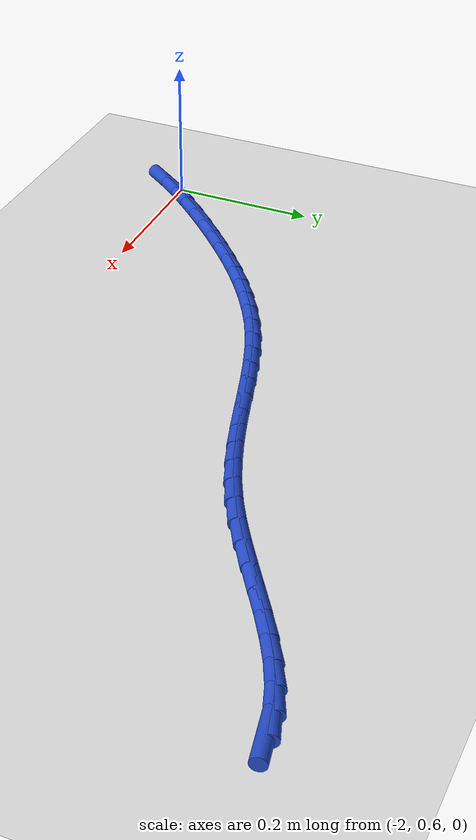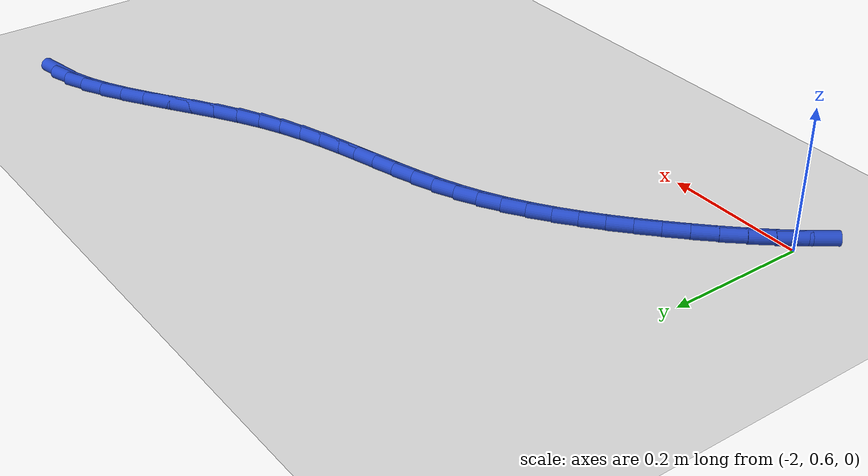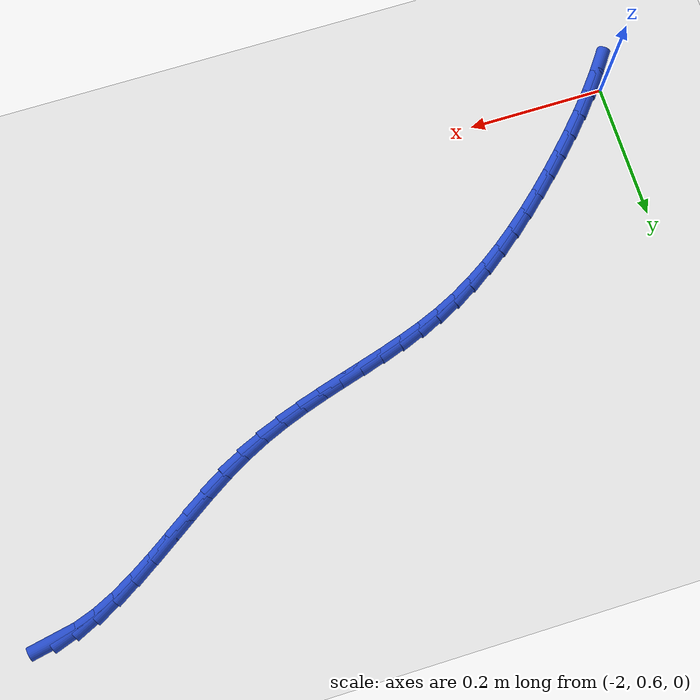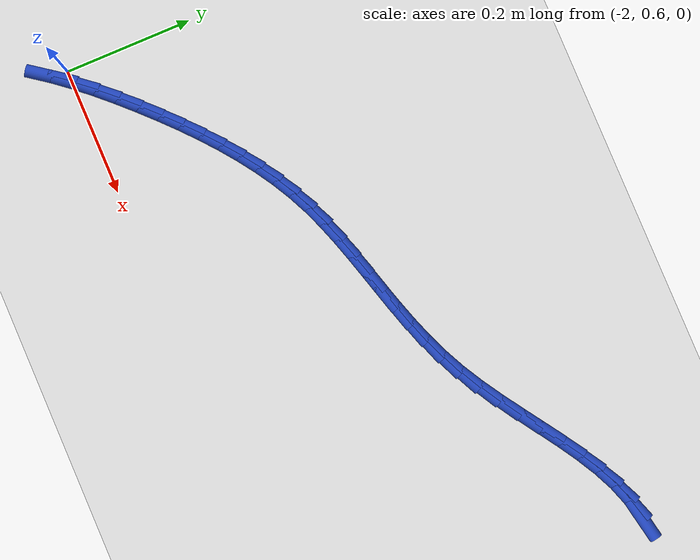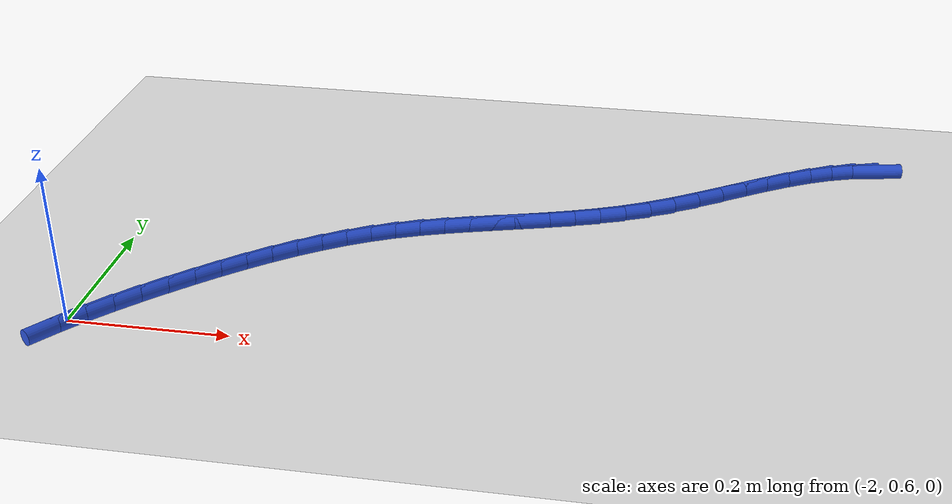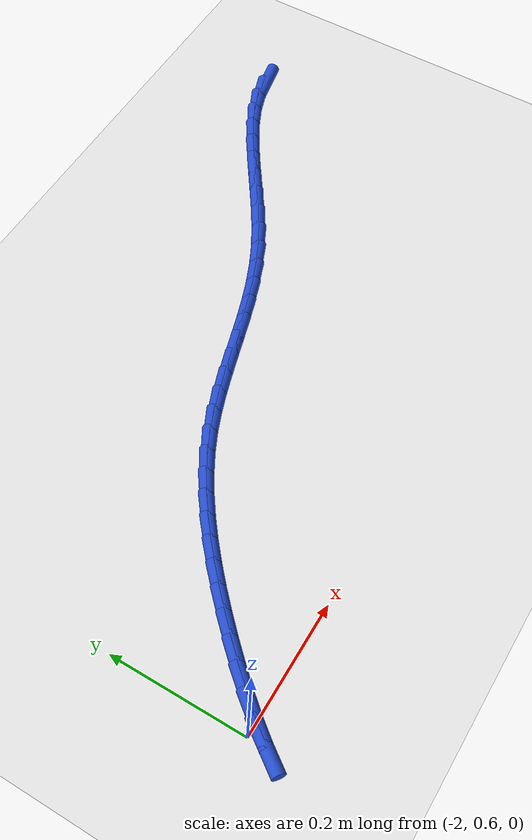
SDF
<sdf version="1.6">
 <world name="default">
  <model name="ground_plane">
   <static>1</static>
   <link name="link">
    <collision name="collision">
     <geometry><plane><normal>0 0 1</normal><size>100 100</size></plane></geometry>
     <surface><friction><ode><mu>100</mu><mu2>50</mu2></ode></friction></surface>
    </collision>
    <visual name="visual">
     <cast_shadows>0</cast_shadows>
     <geometry><plane><normal>0 0 1</normal><size>100 100</size></plane></geometry>
     <material>
      <script><uri>file://media/materials/scripts/gazebo.material</uri><name>Gazebo/WhiteGlow</name></script>
     </material>
    </visual>
   </link>
  </model>
  <model name="line">
   <link name="link_49">
    <pose>-1.0466964466362036 1.134004344013409 0.01 0 1.57 0.19464441656322196</pose>
    <collision name="collision">
     <geometry><cylinder><radius>0.01</radius><length>0.08</length></cylinder></geometry>
    </collision>
    <visual name="visual">
     <material>
      <script><name>Gazebo/Blue</name><uri>file://media/materials/scripts/gazebo.material</uri></script>
     </material>
     <geometry><cylinder><radius>0.01</radius><length>0.08</length></cylinder></geometry>
    </visual>
   </link>
   <link name="link_50">
    <pose>-1.0760655850857805 1.1282145009810196 0.01 0 1.57 0.33294182814942536</pose>
    <collision name="collision">
     <geometry><cylinder><radius>0.01</radius><length>0.08</length></cylinder></geometry>
    </collision>
    <visual name="visual">
     <material>
      <script><name>Gazebo/Blue</name><uri>file://media/materials/scripts/gazebo.material</uri></script>
     </material>
     <geometry><cylinder><radius>0.01</radius><length>0.08</length></cylinder></geometry>
    </visual>
   </link>
   <link name="link_51">
    <pose>-1.1056174985695253 1.117995001126438 0.01 0 1.57 0.43646254641301574</pose>
    <collision name="collision">
     <geometry><cylinder><radius>0.01</radius><length>0.08</length></cylinder></geometry>
    </collision>
    <visual name="visual">
     <material>
      <script><name>Gazebo/Blue</name><uri>file://media/materials/scripts/gazebo.material</uri></script>
     </material>
     <geometry><cylinder><radius>0.01</radius><length>0.08</length></cylinder></geometry>
    </visual>
   </link>
   <link name="link_52">
    <pose>-1.1353670049846938 1.1041178613363076 0.01 0 1.57 0.5100839713462348</pose>
    <collision name="collision">
     <geometry><cylinder><radius>0.01</radius><length>0.08</length></cylinder></geometry>
    </collision>
    <visual name="visual">
     <material>
      <script><name>Gazebo/Blue</name><uri>file://media/materials/scripts/gazebo.material</uri></script>
     </material>
     <geometry><cylinder><radius>0.01</radius><length>0.08</length></cylinder></geometry>
    </visual>
   </link>
   <link name="link_53">
    <pose>-1.1653289222285417 1.087355098497274 0.01 0 1.57 0.5587934895889223</pose>
    <collision name="collision">
     <geometry><cylinder><radius>0.01</radius><length>0.08</length></cylinder></geometry>
    </collision>
    <visual name="visual">
     <material>
      <script><name>Gazebo/Blue</name><uri>file://media/materials/scripts/gazebo.material</uri></script>
     </material>
     <geometry><cylinder><radius>0.01</radius><length>0.08</length></cylinder></geometry>
    </visual>
   </link>
   <link name="link_54">
    <pose>-1.1955180681983235 1.0684787294959799 0.01 0 1.57 0.586419737218822</pose>
    <collision name="collision">
     <geometry><cylinder><radius>0.01</radius><length>0.08</length></cylinder></geometry>
    </collision>
    <visual name="visual">
     <material>
      <script><name>Gazebo/Blue</name><uri>file://media/materials/scripts/gazebo.material</uri></script>
     </material>
     <geometry><cylinder><radius>0.01</radius><length>0.08</length></cylinder></geometry>
    </visual>
   </link>
   <link name="link_55">
    <pose>-1.225949260791296 1.0482607712190717 0.01 0 1.57 0.5953841174515219</pose>
    <collision name="collision">
     <geometry><cylinder><radius>0.01</radius><length>0.08</length></cylinder></geometry>
    </collision>
    <visual name="visual">
     <material>
      <script><name>Gazebo/Blue</name><uri>file://media/materials/scripts/gazebo.material</uri></script>
     </material>
     <geometry><cylinder><radius>0.01</radius><length>0.08</length></cylinder></geometry>
    </visual>
   </link>
   <link name="link_56">
    <pose>-1.256637317904714 1.0274732405531923 0.01 0 1.57 0.5867775291602454</pose>
    <collision name="collision">
     <geometry><cylinder><radius>0.01</radius><length>0.08</length></cylinder></geometry>
    </collision>
    <visual name="visual">
     <material>
      <script><name>Gazebo/Blue</name><uri>file://media/materials/scripts/gazebo.material</uri></script>
     </material>
     <geometry><cylinder><radius>0.01</radius><length>0.08</length></cylinder></geometry>
    </visual>
   </link>
   <link name="link_57">
    <pose>-1.2875970574358322 1.0068881543849864 0.01 0 1.57 0.560477921617894</pose>
    <collision name="collision">
     <geometry><cylinder><radius>0.01</radius><length>0.08</length></cylinder></geometry>
    </collision>
    <visual name="visual">
     <material>
      <script><name>Gazebo/Blue</name><uri>file://media/materials/scripts/gazebo.material</uri></script>
     </material>
     <geometry><cylinder><radius>0.01</radius><length>0.08</length></cylinder></geometry>
    </visual>
   </link>
   <link name="link_58">
    <pose>-1.318843297281907 0.9872775296010987 0.01 0 1.57 0.5152417630013832</pose>
    <collision name="collision">
     <geometry><cylinder><radius>0.01</radius><length>0.08</length></cylinder></geometry>
    </collision>
    <visual name="visual">
     <material>
      <script><name>Gazebo/Blue</name><uri>file://media/materials/scripts/gazebo.material</uri></script>
     </material>
     <geometry><cylinder><radius>0.01</radius><length>0.08</length></cylinder></geometry>
    </visual>
   </link>
   <link name="link_59">
    <pose>-1.3503908553401938 0.9694133830881732 0.01 0 1.57 0.4533265770896093</pose>
    <collision name="collision">
     <geometry><cylinder><radius>0.01</radius><length>0.08</length></cylinder></geometry>
    </collision>
    <visual name="visual">
     <material>
      <script><name>Gazebo/Blue</name><uri>file://media/materials/scripts/gazebo.material</uri></script>
     </material>
     <geometry><cylinder><radius>0.01</radius><length>0.08</length></cylinder></geometry>
    </visual>
   </link>
   <link name="link_60">
    <pose>-1.3822378140079319 0.95389867564105 0.01 0 1.57 0.39497438391797124</pose>
    <collision name="collision">
     <geometry><cylinder><radius>0.01</radius><length>0.08</length></cylinder></geometry>
    </collision>
    <visual name="visual">
     <material>
      <script><name>Gazebo/Blue</name><uri>file://media/materials/scripts/gazebo.material</uri></script>
     </material>
     <geometry><cylinder><radius>0.01</radius><length>0.08</length></cylinder></geometry>
    </visual>
   </link>
   <link name="link_61">
    <pose>-1.414302574950923 0.9405314615363625 0.01 0 1.57 0.3476762622930825</pose>
    <collision name="collision">
     <geometry><cylinder><radius>0.01</radius><length>0.08</length></cylinder></geometry>
    </collision>
    <visual name="visual">
     <material>
      <script><name>Gazebo/Blue</name><uri>file://media/materials/scripts/gazebo.material</uri></script>
     </material>
     <geometry><cylinder><radius>0.01</radius><length>0.08</length></cylinder></geometry>
    </visual>
   </link>
   <link name="link_62">
    <pose>-1.4464798512812636 0.9288705016740093 0.01 0 1.57 0.31243288606901987</pose>
    <collision name="collision">
     <geometry><cylinder><radius>0.01</radius><length>0.08</length></cylinder></geometry>
    </collision>
    <visual name="visual">
     <material>
      <script><name>Gazebo/Blue</name><uri>file://media/materials/scripts/gazebo.material</uri></script>
     </material>
     <geometry><cylinder><radius>0.01</radius><length>0.08</length></cylinder></geometry>
    </visual>
   </link>
   <link name="link_63">
    <pose>-1.478664352214446 0.9184745175917847 0.01 0 1.57 0.289922283530248</pose>
    <collision name="collision">
     <geometry><cylinder><radius>0.01</radius><length>0.08</length></cylinder></geometry>
    </collision>
    <visual name="visual">
     <material>
      <script><name>Gazebo/Blue</name><uri>file://media/materials/scripts/gazebo.material</uri></script>
     </material>
     <geometry><cylinder><radius>0.01</radius><length>0.08</length></cylinder></geometry>
    </visual>
   </link>
   <link name="link_64">
    <pose>-1.510750786965962 0.9089022308274816 0.01 0 1.57 0.280629994271288</pose>
    <collision name="collision">
     <geometry><cylinder><radius>0.01</radius><length>0.08</length></cylinder></geometry>
    </collision>
    <visual name="visual">
     <material>
      <script><name>Gazebo/Blue</name><uri>file://media/materials/scripts/gazebo.material</uri></script>
     </material>
     <geometry><cylinder><radius>0.01</radius><length>0.08</length></cylinder></geometry>
    </visual>
   </link>
   <link name="link_65">
    <pose>-1.5426338647513045 0.8997123629188934 0.01 0 1.57 0.28494720110951344</pose>
    <collision name="collision">
     <geometry><cylinder><radius>0.01</radius><length>0.08</length></cylinder></geometry>
    </collision>
    <visual name="visual">
     <material>
      <script><name>Gazebo/Blue</name><uri>file://media/materials/scripts/gazebo.material</uri></script>
     </material>
     <geometry><cylinder><radius>0.01</radius><length>0.08</length></cylinder></geometry>
    </visual>
   </link>
   <link name="link_66">
    <pose>-1.5742082947859648 0.8904636354038135 0.01 0 1.57 0.3032126371316894</pose>
    <collision name="collision">
     <geometry><cylinder><radius>0.01</radius><length>0.08</length></cylinder></geometry>
    </collision>
    <visual name="visual">
     <material>
      <script><name>Gazebo/Blue</name><uri>file://media/materials/scripts/gazebo.material</uri></script>
     </material>
     <geometry><cylinder><radius>0.01</radius><length>0.08</length></cylinder></geometry>
    </visual>
   </link>
   <link name="link_67">
    <pose>-1.6053687862854358 0.8807147698200348 0.01 0 1.57 0.33568131168886234</pose>
    <collision name="collision">
     <geometry><cylinder><radius>0.01</radius><length>0.08</length></cylinder></geometry>
    </collision>
    <visual name="visual">
     <material>
      <script><name>Gazebo/Blue</name><uri>file://media/materials/scripts/gazebo.material</uri></script>
     </material>
     <geometry><cylinder><radius>0.01</radius><length>0.08</length></cylinder></geometry>
    </visual>
   </link>
   <link name="link_68">
    <pose>-1.63601004846521 0.8700244877053516 0.01 0 1.57 0.3824084698986068</pose>
    <collision name="collision">
     <geometry><cylinder><radius>0.01</radius><length>0.08</length></cylinder></geometry>
    </collision>
    <visual name="visual">
     <material>
      <script><name>Gazebo/Blue</name><uri>file://media/materials/scripts/gazebo.material</uri></script>
     </material>
     <geometry><cylinder><radius>0.01</radius><length>0.08</length></cylinder></geometry>
    </visual>
   </link>
   <link name="link_69">
    <pose>-1.666026790540779 0.8579515105975564 0.01 0 1.57 0.44217697061646555</pose>
    <collision name="collision">
     <geometry><cylinder><radius>0.01</radius><length>0.08</length></cylinder></geometry>
    </collision>
    <visual name="visual">
     <material>
      <script><name>Gazebo/Blue</name><uri>file://media/materials/scripts/gazebo.material</uri></script>
     </material>
     <geometry><cylinder><radius>0.01</radius><length>0.08</length></cylinder></geometry>
    </visual>
   </link>
   <link name="link_70">
    <pose>-1.6953209063977133 0.844082424650987 0.01 0 1.57 0.5035948965340085</pose>
    <collision name="collision">
     <geometry><cylinder><radius>0.01</radius><length>0.08</length></cylinder></geometry>
    </collision>
    <visual name="visual">
     <material>
      <script><name>Gazebo/Blue</name><uri>file://media/materials/scripts/gazebo.material</uri></script>
     </material>
     <geometry><cylinder><radius>0.01</radius><length>0.08</length></cylinder></geometry>
    </visual>
   </link>
   <link name="link_71">
    <pose>-1.7238824204854988 0.8283456165957505 0.01 0 1.57 0.5591934578957851</pose>
    <collision name="collision">
     <geometry><cylinder><radius>0.01</radius><length>0.08</length></cylinder></geometry>
    </collision>
    <visual name="visual">
     <material>
      <script><name>Gazebo/Blue</name><uri>file://media/materials/scripts/gazebo.material</uri></script>
     </material>
     <geometry><cylinder><radius>0.01</radius><length>0.08</length></cylinder></geometry>
    </visual>
   </link>
   <link name="link_72">
    <pose>-1.751760483485701 0.8108987849837469 0.01 0 1.57 0.6088395163548921</pose>
    <collision name="collision">
     <geometry><cylinder><radius>0.01</radius><length>0.08</length></cylinder></geometry>
    </collision>
    <visual name="visual">
     <material>
      <script><name>Gazebo/Blue</name><uri>file://media/materials/scripts/gazebo.material</uri></script>
     </material>
     <geometry><cylinder><radius>0.01</radius><length>0.08</length></cylinder></geometry>
    </visual>
   </link>
   <link name="link_73">
    <pose>-1.779005338602812 0.791903865545777 0.01 0 1.57 0.652670693244233</pose>
    <collision name="collision">
     <geometry><cylinder><radius>0.01</radius><length>0.08</length></cylinder></geometry>
    </collision>
    <visual name="visual">
     <material>
      <script><name>Gazebo/Blue</name><uri>file://media/materials/scripts/gazebo.material</uri></script>
     </material>
     <geometry><cylinder><radius>0.01</radius><length>0.08</length></cylinder></geometry>
    </visual>
   </link>
   <link name="link_74">
    <pose>-1.8056672290413247 0.771522794012641 0.01 0 1.57 0.6909085673088882</pose>
    <collision name="collision">
     <geometry><cylinder><radius>0.01</radius><length>0.08</length></cylinder></geometry>
    </collision>
    <visual name="visual">
     <material>
      <script><name>Gazebo/Blue</name><uri>file://media/materials/scripts/gazebo.material</uri></script>
     </material>
     <geometry><cylinder><radius>0.01</radius><length>0.08</length></cylinder></geometry>
    </visual>
   </link>
   <link name="link_75">
    <pose>-1.8317963980057312 0.7499175061151394 0.01 0 1.57 0.7238147894607163</pose>
    <collision name="collision">
     <geometry><cylinder><radius>0.01</radius><length>0.08</length></cylinder></geometry>
    </collision>
    <visual name="visual">
     <material>
      <script><name>Gazebo/Blue</name><uri>file://media/materials/scripts/gazebo.material</uri></script>
     </material>
     <geometry><cylinder><radius>0.01</radius><length>0.08</length></cylinder></geometry>
    </visual>
   </link>
   <link name="link_76">
    <pose>-1.8574430887005253 0.7272499375840727 0.01 0 1.57 0.7516581589905312</pose>
    <collision name="collision">
     <geometry><cylinder><radius>0.01</radius><length>0.08</length></cylinder></geometry>
    </collision>
    <visual name="visual">
     <material>
      <script><name>Gazebo/Blue</name><uri>file://media/materials/scripts/gazebo.material</uri></script>
     </material>
     <geometry><cylinder><radius>0.01</radius><length>0.08</length></cylinder></geometry>
    </visual>
   </link>
   <link name="link_77">
    <pose>-1.8826575443301985 0.7036820241502411 0.01 0 1.57 0.7746973485571419</pose>
    <collision name="collision">
     <geometry><cylinder><radius>0.01</radius><length>0.08</length></cylinder></geometry>
    </collision>
    <visual name="visual">
     <material>
      <script><name>Gazebo/Blue</name><uri>file://media/materials/scripts/gazebo.material</uri></script>
     </material>
     <geometry><cylinder><radius>0.01</radius><length>0.08</length></cylinder></geometry>
    </visual>
   </link>
   <link name="link_78">
    <pose>-1.9074898119739137 0.6793756006135165 0.01 0 1.57 0.7957583543262888</pose>
    <collision name="collision">
     <geometry><cylinder><radius>0.01</radius><length>0.08</length></cylinder></geometry>
    </collision>
    <visual name="visual">
     <material>
      <script><name>Gazebo/Blue</name><uri>file://media/materials/scripts/gazebo.material</uri></script>
     </material>
     <geometry><cylinder><radius>0.01</radius><length>0.08</length></cylinder></geometry>
    </visual>
   </link>
   <link name="link_79">
    <pose>-1.931905270820337 0.6544489295906067 0.01 0 1.57 0.8217496124324785</pose>
    <collision name="collision">
     <geometry><cylinder><radius>0.01</radius><length>0.08</length></cylinder></geometry>
    </collision>
    <visual name="visual">
     <material>
      <script><name>Gazebo/Blue</name><uri>file://media/materials/scripts/gazebo.material</uri></script>
     </material>
     <geometry><cylinder><radius>0.01</radius><length>0.08</length></cylinder></geometry>
    </visual>
   </link>
   <link name="link_80">
    <pose>-1.9556528506716304 0.6289088835093414 0.01 0 1.57 0.854114407242088</pose>
    <collision name="collision">
     <geometry><cylinder><radius>0.01</radius><length>0.08</length></cylinder></geometry>
    </collision>
    <visual name="visual">
     <material>
      <script><name>Gazebo/Blue</name><uri>file://media/materials/scripts/gazebo.material</uri></script>
     </material>
     <geometry><cylinder><radius>0.01</radius><length>0.08</length></cylinder></geometry>
    </visual>
   </link>
   <link name="link_81">
    <pose>-1.978447386795913 0.6027447889100414 0.01 0 1.57 0.8933927188373583</pose>
    <collision name="collision">
     <geometry><cylinder><radius>0.01</radius><length>0.08</length></cylinder></geometry>
    </collision>
    <visual name="visual">
     <material>
      <script><name>Gazebo/Blue</name><uri>file://media/materials/scripts/gazebo.material</uri></script>
     </material>
     <geometry><cylinder><radius>0.01</radius><length>0.08</length></cylinder></geometry>
    </visual>
   </link>
   <link name="link_82">
    <pose>-2.0000037144613048 0.5759459723330285 0.01 0 1.57 0.9402499541824688</pose>
    <collision name="collision">
     <geometry><cylinder><radius>0.01</radius><length>0.08</length></cylinder></geometry>
    </collision>
    <visual name="visual">
     <material>
      <script><name>Gazebo/Blue</name><uri>file://media/materials/scripts/gazebo.material</uri></script>
     </material>
     <geometry><cylinder><radius>0.01</radius><length>0.08</length></cylinder></geometry>
    </visual>
   </link>
  </model>
 </world>
</sdf>
